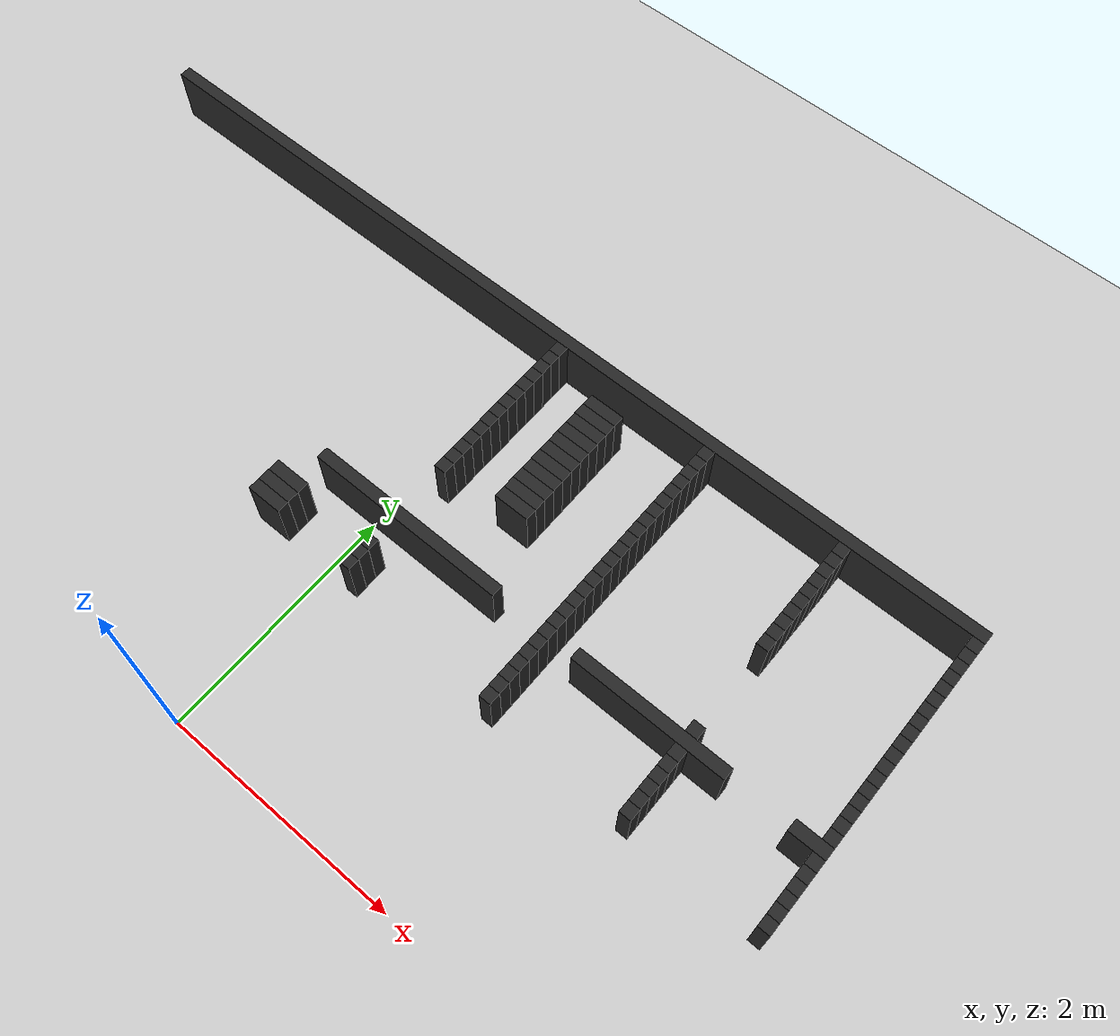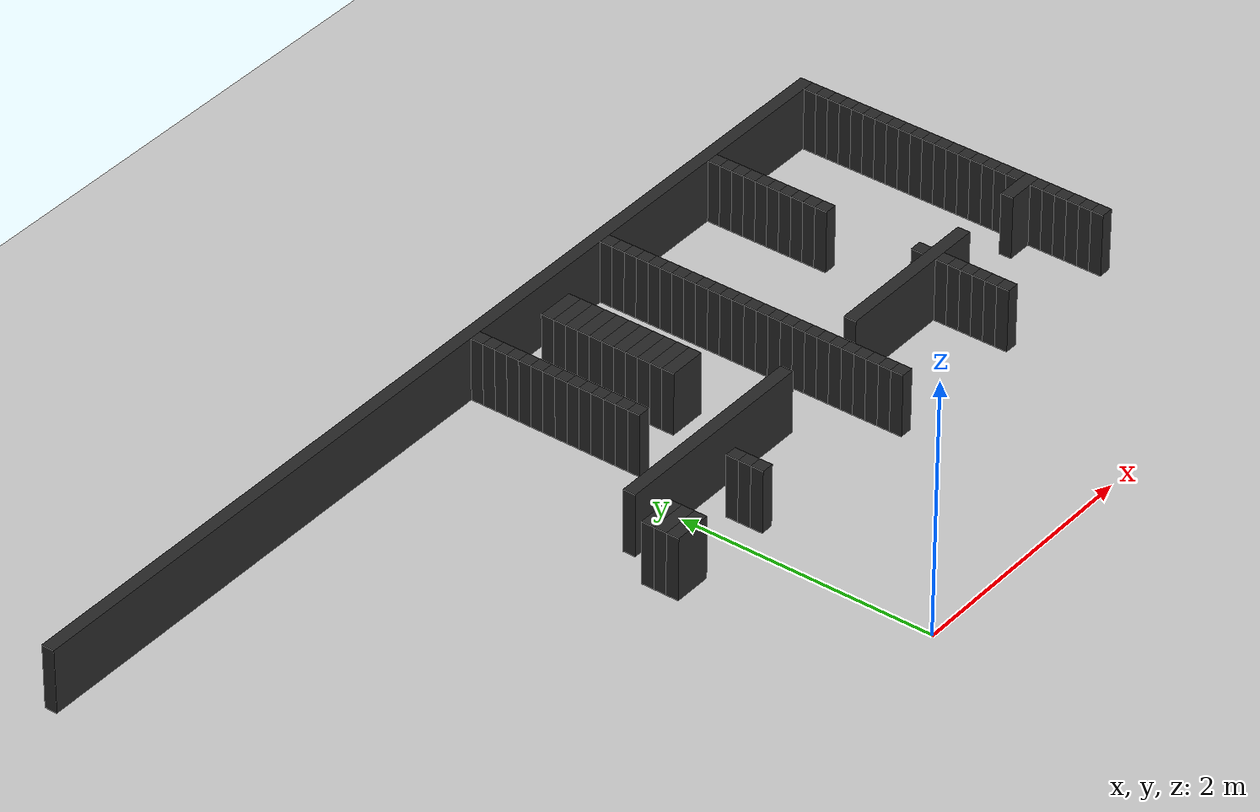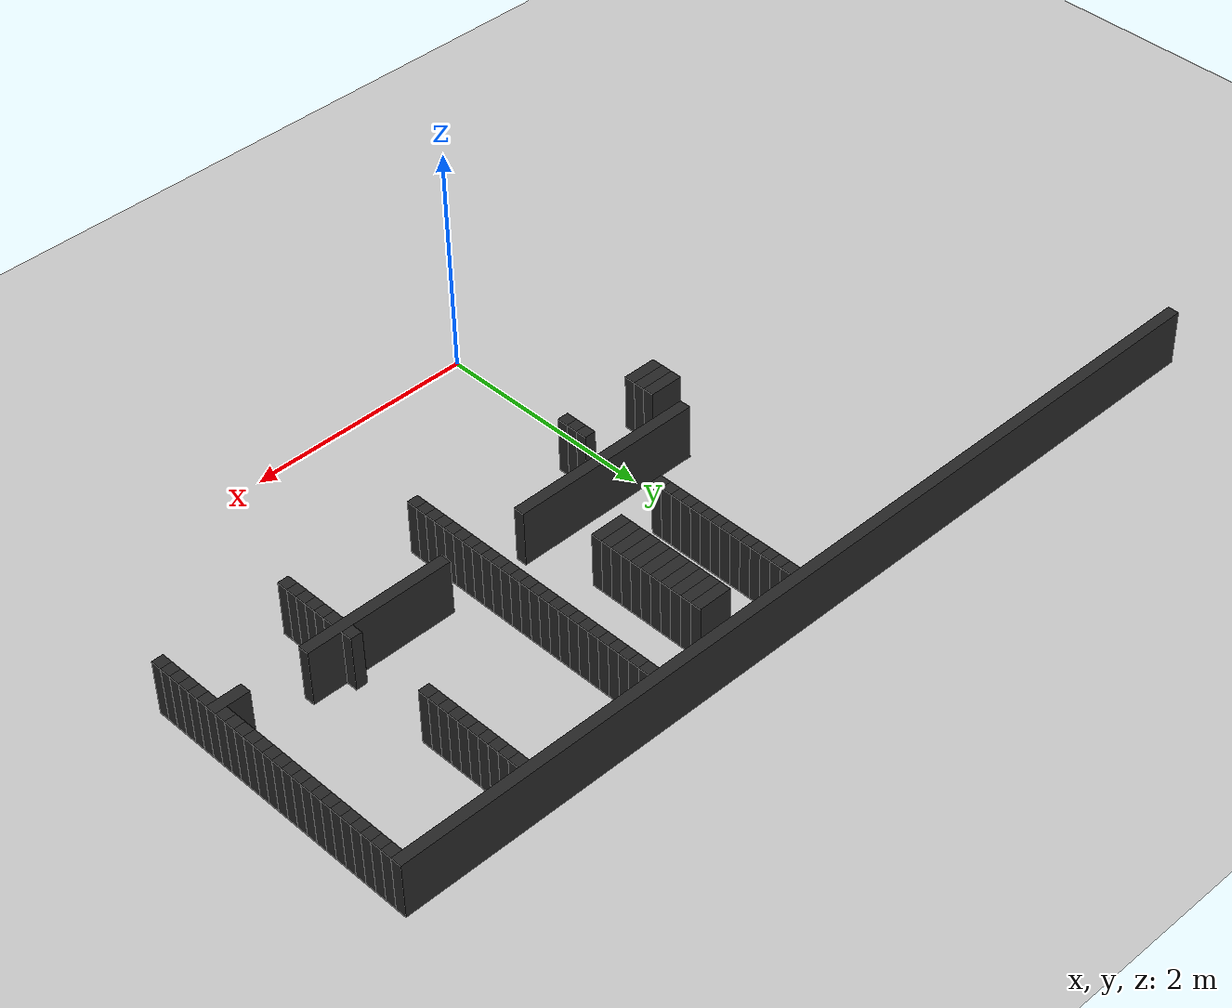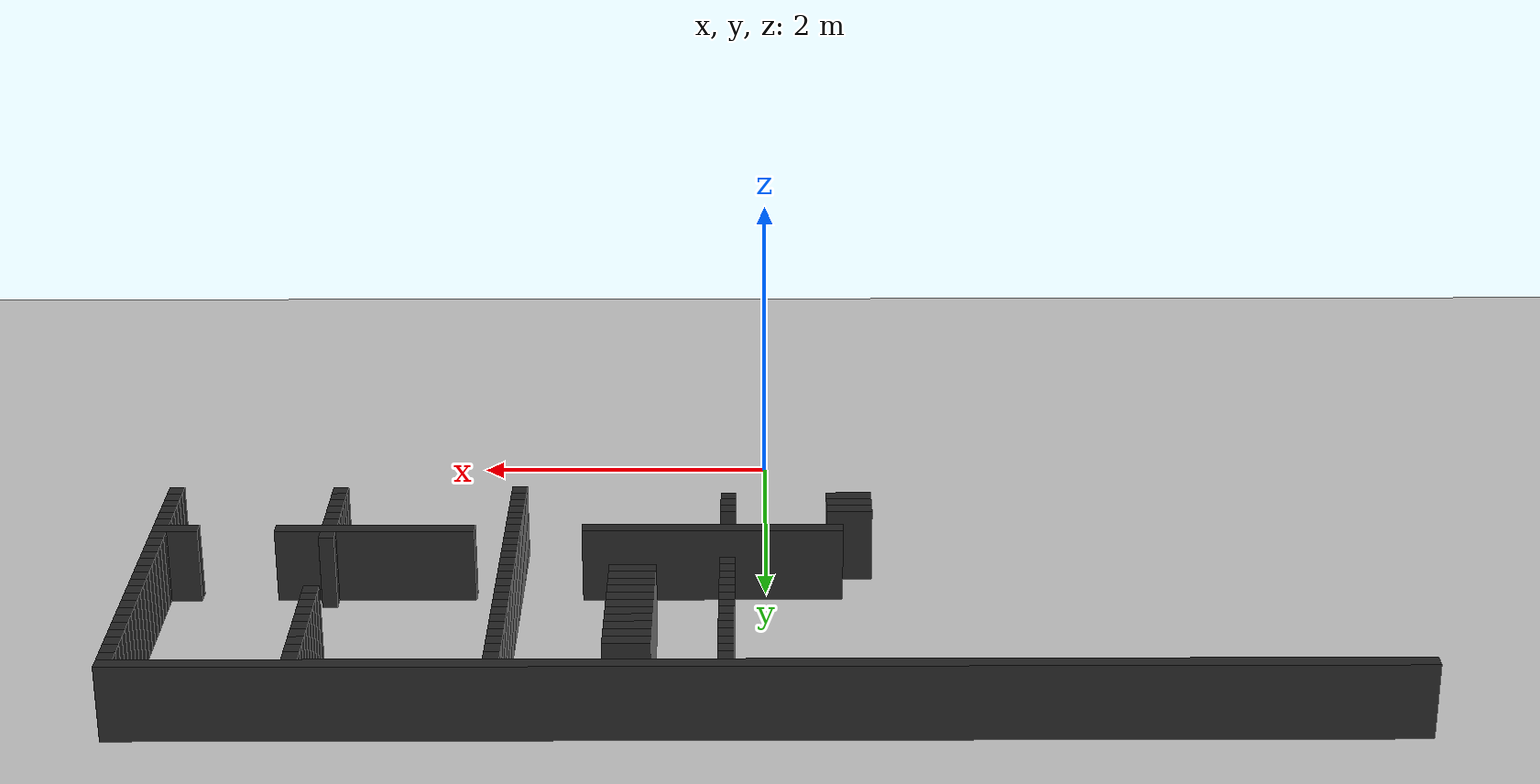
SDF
<sdf version="1.6">
 <world name="stress_maze_world">
  <include><uri>model://sun</uri></include>
  <include><uri>model://ground_plane</uri></include>
  <model name="wall_054_056">
   <static>true</static>
   <pose>1.65000 1.45000 0.25 0 0 0</pose>
   <link name="link">
    <collision name="collision"><geometry><box><size>0.10000 0.10000 0.5</size></box></geometry></collision>
    <visual name="visual">
     <geometry><box><size>0.10000 0.10000 0.5</size></box></geometry>
     <material><ambient>0.12 0.12 0.12 1</ambient><diffuse>0.15 0.15 0.15 1</diffuse></material>
    </visual>
   </link>
  </model>
  <model name="wall_054_068">
   <static>true</static>
   <pose>2.85000 1.45000 0.25 0 0 0</pose>
   <link name="link">
    <collision name="collision"><geometry><box><size>0.10000 0.10000 0.5</size></box></geometry></collision>
    <visual name="visual">
     <geometry><box><size>0.10000 0.10000 0.5</size></box></geometry>
     <material><ambient>0.12 0.12 0.12 1</ambient><diffuse>0.15 0.15 0.15 1</diffuse></material>
    </visual>
   </link>
  </model>
  <model name="wall_054_079">
   <static>true</static>
   <pose>3.95000 1.45000 0.25 0 0 0</pose>
   <link name="link">
    <collision name="collision"><geometry><box><size>0.10000 0.10000 0.5</size></box></geometry></collision>
    <visual name="visual">
     <geometry><box><size>0.10000 0.10000 0.5</size></box></geometry>
     <material><ambient>0.12 0.12 0.12 1</ambient><diffuse>0.15 0.15 0.15 1</diffuse></material>
    </visual>
   </link>
  </model>
  <model name="wall_055_033">
   <static>true</static>
   <pose>-0.55000 1.55000 0.25 0 0 0</pose>
   <link name="link">
    <collision name="collision"><geometry><box><size>0.30000 0.10000 0.5</size></box></geometry></collision>
    <visual name="visual">
     <geometry><box><size>0.30000 0.10000 0.5</size></box></geometry>
     <material><ambient>0.12 0.12 0.12 1</ambient><diffuse>0.15 0.15 0.15 1</diffuse></material>
    </visual>
   </link>
  </model>
  <model name="wall_055_042">
   <static>true</static>
   <pose>0.25000 1.55000 0.25 0 0 0</pose>
   <link name="link">
    <collision name="collision"><geometry><box><size>0.10000 0.10000 0.5</size></box></geometry></collision>
    <visual name="visual">
     <geometry><box><size>0.10000 0.10000 0.5</size></box></geometry>
     <material><ambient>0.12 0.12 0.12 1</ambient><diffuse>0.15 0.15 0.15 1</diffuse></material>
    </visual>
   </link>
  </model>
  <model name="wall_055_056">
   <static>true</static>
   <pose>1.65000 1.55000 0.25 0 0 0</pose>
   <link name="link">
    <collision name="collision"><geometry><box><size>0.10000 0.10000 0.5</size></box></geometry></collision>
    <visual name="visual">
     <geometry><box><size>0.10000 0.10000 0.5</size></box></geometry>
     <material><ambient>0.12 0.12 0.12 1</ambient><diffuse>0.15 0.15 0.15 1</diffuse></material>
    </visual>
   </link>
  </model>
  <model name="wall_055_068">
   <static>true</static>
   <pose>2.85000 1.55000 0.25 0 0 0</pose>
   <link name="link">
    <collision name="collision"><geometry><box><size>0.10000 0.10000 0.5</size></box></geometry></collision>
    <visual name="visual">
     <geometry><box><size>0.10000 0.10000 0.5</size></box></geometry>
     <material><ambient>0.12 0.12 0.12 1</ambient><diffuse>0.15 0.15 0.15 1</diffuse></material>
    </visual>
   </link>
  </model>
  <model name="wall_055_079">
   <static>true</static>
   <pose>3.95000 1.55000 0.25 0 0 0</pose>
   <link name="link">
    <collision name="collision"><geometry><box><size>0.10000 0.10000 0.5</size></box></geometry></collision>
    <visual name="visual">
     <geometry><box><size>0.10000 0.10000 0.5</size></box></geometry>
     <material><ambient>0.12 0.12 0.12 1</ambient><diffuse>0.15 0.15 0.15 1</diffuse></material>
    </visual>
   </link>
  </model>
  <model name="wall_056_033">
   <static>true</static>
   <pose>-0.55000 1.65000 0.25 0 0 0</pose>
   <link name="link">
    <collision name="collision"><geometry><box><size>0.30000 0.10000 0.5</size></box></geometry></collision>
    <visual name="visual">
     <geometry><box><size>0.30000 0.10000 0.5</size></box></geometry>
     <material><ambient>0.12 0.12 0.12 1</ambient><diffuse>0.15 0.15 0.15 1</diffuse></material>
    </visual>
   </link>
  </model>
  <model name="wall_056_042">
   <static>true</static>
   <pose>0.25000 1.65000 0.25 0 0 0</pose>
   <link name="link">
    <collision name="collision"><geometry><box><size>0.10000 0.10000 0.5</size></box></geometry></collision>
    <visual name="visual">
     <geometry><box><size>0.10000 0.10000 0.5</size></box></geometry>
     <material><ambient>0.12 0.12 0.12 1</ambient><diffuse>0.15 0.15 0.15 1</diffuse></material>
    </visual>
   </link>
  </model>
  <model name="wall_056_056">
   <static>true</static>
   <pose>1.65000 1.65000 0.25 0 0 0</pose>
   <link name="link">
    <collision name="collision"><geometry><box><size>0.10000 0.10000 0.5</size></box></geometry></collision>
    <visual name="visual">
     <geometry><box><size>0.10000 0.10000 0.5</size></box></geometry>
     <material><ambient>0.12 0.12 0.12 1</ambient><diffuse>0.15 0.15 0.15 1</diffuse></material>
    </visual>
   </link>
  </model>
  <model name="wall_056_068">
   <static>true</static>
   <pose>2.85000 1.65000 0.25 0 0 0</pose>
   <link name="link">
    <collision name="collision"><geometry><box><size>0.10000 0.10000 0.5</size></box></geometry></collision>
    <visual name="visual">
     <geometry><box><size>0.10000 0.10000 0.5</size></box></geometry>
     <material><ambient>0.12 0.12 0.12 1</ambient><diffuse>0.15 0.15 0.15 1</diffuse></material>
    </visual>
   </link>
  </model>
  <model name="wall_056_079">
   <static>true</static>
   <pose>3.95000 1.65000 0.25 0 0 0</pose>
   <link name="link">
    <collision name="collision"><geometry><box><size>0.10000 0.10000 0.5</size></box></geometry></collision>
    <visual name="visual">
     <geometry><box><size>0.10000 0.10000 0.5</size></box></geometry>
     <material><ambient>0.12 0.12 0.12 1</ambient><diffuse>0.15 0.15 0.15 1</diffuse></material>
    </visual>
   </link>
  </model>
  <model name="wall_057_033">
   <static>true</static>
   <pose>-0.55000 1.75000 0.25 0 0 0</pose>
   <link name="link">
    <collision name="collision"><geometry><box><size>0.30000 0.10000 0.5</size></box></geometry></collision>
    <visual name="visual">
     <geometry><box><size>0.30000 0.10000 0.5</size></box></geometry>
     <material><ambient>0.12 0.12 0.12 1</ambient><diffuse>0.15 0.15 0.15 1</diffuse></material>
    </visual>
   </link>
  </model>
  <model name="wall_057_042">
   <static>true</static>
   <pose>0.25000 1.75000 0.25 0 0 0</pose>
   <link name="link">
    <collision name="collision"><geometry><box><size>0.10000 0.10000 0.5</size></box></geometry></collision>
    <visual name="visual">
     <geometry><box><size>0.10000 0.10000 0.5</size></box></geometry>
     <material><ambient>0.12 0.12 0.12 1</ambient><diffuse>0.15 0.15 0.15 1</diffuse></material>
    </visual>
   </link>
  </model>
  <model name="wall_057_056">
   <static>true</static>
   <pose>1.65000 1.75000 0.25 0 0 0</pose>
   <link name="link">
    <collision name="collision"><geometry><box><size>0.10000 0.10000 0.5</size></box></geometry></collision>
    <visual name="visual">
     <geometry><box><size>0.10000 0.10000 0.5</size></box></geometry>
     <material><ambient>0.12 0.12 0.12 1</ambient><diffuse>0.15 0.15 0.15 1</diffuse></material>
    </visual>
   </link>
  </model>
  <model name="wall_057_068">
   <static>true</static>
   <pose>2.85000 1.75000 0.25 0 0 0</pose>
   <link name="link">
    <collision name="collision"><geometry><box><size>0.10000 0.10000 0.5</size></box></geometry></collision>
    <visual name="visual">
     <geometry><box><size>0.10000 0.10000 0.5</size></box></geometry>
     <material><ambient>0.12 0.12 0.12 1</ambient><diffuse>0.15 0.15 0.15 1</diffuse></material>
    </visual>
   </link>
  </model>
  <model name="wall_057_079">
   <static>true</static>
   <pose>3.95000 1.75000 0.25 0 0 0</pose>
   <link name="link">
    <collision name="collision"><geometry><box><size>0.10000 0.10000 0.5</size></box></geometry></collision>
    <visual name="visual">
     <geometry><box><size>0.10000 0.10000 0.5</size></box></geometry>
     <material><ambient>0.12 0.12 0.12 1</ambient><diffuse>0.15 0.15 0.15 1</diffuse></material>
    </visual>
   </link>
  </model>
  <model name="wall_058_056">
   <static>true</static>
   <pose>1.65000 1.85000 0.25 0 0 0</pose>
   <link name="link">
    <collision name="collision"><geometry><box><size>0.10000 0.10000 0.5</size></box></geometry></collision>
    <visual name="visual">
     <geometry><box><size>0.10000 0.10000 0.5</size></box></geometry>
     <material><ambient>0.12 0.12 0.12 1</ambient><diffuse>0.15 0.15 0.15 1</diffuse></material>
    </visual>
   </link>
  </model>
  <model name="wall_058_068">
   <static>true</static>
   <pose>2.85000 1.85000 0.25 0 0 0</pose>
   <link name="link">
    <collision name="collision"><geometry><box><size>0.10000 0.10000 0.5</size></box></geometry></collision>
    <visual name="visual">
     <geometry><box><size>0.10000 0.10000 0.5</size></box></geometry>
     <material><ambient>0.12 0.12 0.12 1</ambient><diffuse>0.15 0.15 0.15 1</diffuse></material>
    </visual>
   </link>
  </model>
  <model name="wall_058_079">
   <static>true</static>
   <pose>3.95000 1.85000 0.25 0 0 0</pose>
   <link name="link">
    <collision name="collision"><geometry><box><size>0.10000 0.10000 0.5</size></box></geometry></collision>
    <visual name="visual">
     <geometry><box><size>0.10000 0.10000 0.5</size></box></geometry>
     <material><ambient>0.12 0.12 0.12 1</ambient><diffuse>0.15 0.15 0.15 1</diffuse></material>
    </visual>
   </link>
  </model>
  <model name="wall_059_056">
   <static>true</static>
   <pose>1.65000 1.95000 0.25 0 0 0</pose>
   <link name="link">
    <collision name="collision"><geometry><box><size>0.10000 0.10000 0.5</size></box></geometry></collision>
    <visual name="visual">
     <geometry><box><size>0.10000 0.10000 0.5</size></box></geometry>
     <material><ambient>0.12 0.12 0.12 1</ambient><diffuse>0.15 0.15 0.15 1</diffuse></material>
    </visual>
   </link>
  </model>
  <model name="wall_059_068">
   <static>true</static>
   <pose>2.85000 1.95000 0.25 0 0 0</pose>
   <link name="link">
    <collision name="collision"><geometry><box><size>0.10000 0.10000 0.5</size></box></geometry></collision>
    <visual name="visual">
     <geometry><box><size>0.10000 0.10000 0.5</size></box></geometry>
     <material><ambient>0.12 0.12 0.12 1</ambient><diffuse>0.15 0.15 0.15 1</diffuse></material>
    </visual>
   </link>
  </model>
  <model name="wall_059_079">
   <static>true</static>
   <pose>3.95000 1.95000 0.25 0 0 0</pose>
   <link name="link">
    <collision name="collision"><geometry><box><size>0.10000 0.10000 0.5</size></box></geometry></collision>
    <visual name="visual">
     <geometry><box><size>0.10000 0.10000 0.5</size></box></geometry>
     <material><ambient>0.12 0.12 0.12 1</ambient><diffuse>0.15 0.15 0.15 1</diffuse></material>
    </visual>
   </link>
  </model>
  <model name="wall_060_035">
   <static>true</static>
   <pose>0.35000 2.05000 0.25 0 0 0</pose>
   <link name="link">
    <collision name="collision"><geometry><box><size>1.70000 0.10000 0.5</size></box></geometry></collision>
    <visual name="visual">
     <geometry><box><size>1.70000 0.10000 0.5</size></box></geometry>
     <material><ambient>0.12 0.12 0.12 1</ambient><diffuse>0.15 0.15 0.15 1</diffuse></material>
    </visual>
   </link>
  </model>
  <model name="wall_060_056">
   <static>true</static>
   <pose>1.65000 2.05000 0.25 0 0 0</pose>
   <link name="link">
    <collision name="collision"><geometry><box><size>0.10000 0.10000 0.5</size></box></geometry></collision>
    <visual name="visual">
     <geometry><box><size>0.10000 0.10000 0.5</size></box></geometry>
     <material><ambient>0.12 0.12 0.12 1</ambient><diffuse>0.15 0.15 0.15 1</diffuse></material>
    </visual>
   </link>
  </model>
  <model name="wall_060_059">
   <static>true</static>
   <pose>2.55000 2.05000 0.25 0 0 0</pose>
   <link name="link">
    <collision name="collision"><geometry><box><size>1.30000 0.10000 0.5</size></box></geometry></collision>
    <visual name="visual">
     <geometry><box><size>1.30000 0.10000 0.5</size></box></geometry>
     <material><ambient>0.12 0.12 0.12 1</ambient><diffuse>0.15 0.15 0.15 1</diffuse></material>
    </visual>
   </link>
  </model>
  <model name="wall_060_077">
   <static>true</static>
   <pose>3.85000 2.05000 0.25 0 0 0</pose>
   <link name="link">
    <collision name="collision"><geometry><box><size>0.30000 0.10000 0.5</size></box></geometry></collision>
    <visual name="visual">
     <geometry><box><size>0.30000 0.10000 0.5</size></box></geometry>
     <material><ambient>0.12 0.12 0.12 1</ambient><diffuse>0.15 0.15 0.15 1</diffuse></material>
    </visual>
   </link>
  </model>
  <model name="wall_061_056">
   <static>true</static>
   <pose>1.65000 2.15000 0.25 0 0 0</pose>
   <link name="link">
    <collision name="collision"><geometry><box><size>0.10000 0.10000 0.5</size></box></geometry></collision>
    <visual name="visual">
     <geometry><box><size>0.10000 0.10000 0.5</size></box></geometry>
     <material><ambient>0.12 0.12 0.12 1</ambient><diffuse>0.15 0.15 0.15 1</diffuse></material>
    </visual>
   </link>
  </model>
  <model name="wall_061_068">
   <static>true</static>
   <pose>2.85000 2.15000 0.25 0 0 0</pose>
   <link name="link">
    <collision name="collision"><geometry><box><size>0.10000 0.10000 0.5</size></box></geometry></collision>
    <visual name="visual">
     <geometry><box><size>0.10000 0.10000 0.5</size></box></geometry>
     <material><ambient>0.12 0.12 0.12 1</ambient><diffuse>0.15 0.15 0.15 1</diffuse></material>
    </visual>
   </link>
  </model>
  <model name="wall_061_079">
   <static>true</static>
   <pose>3.95000 2.15000 0.25 0 0 0</pose>
   <link name="link">
    <collision name="collision"><geometry><box><size>0.10000 0.10000 0.5</size></box></geometry></collision>
    <visual name="visual">
     <geometry><box><size>0.10000 0.10000 0.5</size></box></geometry>
     <material><ambient>0.12 0.12 0.12 1</ambient><diffuse>0.15 0.15 0.15 1</diffuse></material>
    </visual>
   </link>
  </model>
  <model name="wall_062_056">
   <static>true</static>
   <pose>1.65000 2.25000 0.25 0 0 0</pose>
   <link name="link">
    <collision name="collision"><geometry><box><size>0.10000 0.10000 0.5</size></box></geometry></collision>
    <visual name="visual">
     <geometry><box><size>0.10000 0.10000 0.5</size></box></geometry>
     <material><ambient>0.12 0.12 0.12 1</ambient><diffuse>0.15 0.15 0.15 1</diffuse></material>
    </visual>
   </link>
  </model>
  <model name="wall_062_079">
   <static>true</static>
   <pose>3.95000 2.25000 0.25 0 0 0</pose>
   <link name="link">
    <collision name="collision"><geometry><box><size>0.10000 0.10000 0.5</size></box></geometry></collision>
    <visual name="visual">
     <geometry><box><size>0.10000 0.10000 0.5</size></box></geometry>
     <material><ambient>0.12 0.12 0.12 1</ambient><diffuse>0.15 0.15 0.15 1</diffuse></material>
    </visual>
   </link>
  </model>
  <model name="wall_063_056">
   <static>true</static>
   <pose>1.65000 2.35000 0.25 0 0 0</pose>
   <link name="link">
    <collision name="collision"><geometry><box><size>0.10000 0.10000 0.5</size></box></geometry></collision>
    <visual name="visual">
     <geometry><box><size>0.10000 0.10000 0.5</size></box></geometry>
     <material><ambient>0.12 0.12 0.12 1</ambient><diffuse>0.15 0.15 0.15 1</diffuse></material>
    </visual>
   </link>
  </model>
  <model name="wall_063_079">
   <static>true</static>
   <pose>3.95000 2.35000 0.25 0 0 0</pose>
   <link name="link">
    <collision name="collision"><geometry><box><size>0.10000 0.10000 0.5</size></box></geometry></collision>
    <visual name="visual">
     <geometry><box><size>0.10000 0.10000 0.5</size></box></geometry>
     <material><ambient>0.12 0.12 0.12 1</ambient><diffuse>0.15 0.15 0.15 1</diffuse></material>
    </visual>
   </link>
  </model>
  <model name="wall_064_056">
   <static>true</static>
   <pose>1.65000 2.45000 0.25 0 0 0</pose>
   <link name="link">
    <collision name="collision"><geometry><box><size>0.10000 0.10000 0.5</size></box></geometry></collision>
    <visual name="visual">
     <geometry><box><size>0.10000 0.10000 0.5</size></box></geometry>
     <material><ambient>0.12 0.12 0.12 1</ambient><diffuse>0.15 0.15 0.15 1</diffuse></material>
    </visual>
   </link>
  </model>
  <model name="wall_064_079">
   <static>true</static>
   <pose>3.95000 2.45000 0.25 0 0 0</pose>
   <link name="link">
    <collision name="collision"><geometry><box><size>0.10000 0.10000 0.5</size></box></geometry></collision>
    <visual name="visual">
     <geometry><box><size>0.10000 0.10000 0.5</size></box></geometry>
     <material><ambient>0.12 0.12 0.12 1</ambient><diffuse>0.15 0.15 0.15 1</diffuse></material>
    </visual>
   </link>
  </model>
  <model name="wall_065_042">
   <static>true</static>
   <pose>0.25000 2.55000 0.25 0 0 0</pose>
   <link name="link">
    <collision name="collision"><geometry><box><size>0.10000 0.10000 0.5</size></box></geometry></collision>
    <visual name="visual">
     <geometry><box><size>0.10000 0.10000 0.5</size></box></geometry>
     <material><ambient>0.12 0.12 0.12 1</ambient><diffuse>0.15 0.15 0.15 1</diffuse></material>
    </visual>
   </link>
  </model>
  <model name="wall_065_056">
   <static>true</static>
   <pose>1.65000 2.55000 0.25 0 0 0</pose>
   <link name="link">
    <collision name="collision"><geometry><box><size>0.10000 0.10000 0.5</size></box></geometry></collision>
    <visual name="visual">
     <geometry><box><size>0.10000 0.10000 0.5</size></box></geometry>
     <material><ambient>0.12 0.12 0.12 1</ambient><diffuse>0.15 0.15 0.15 1</diffuse></material>
    </visual>
   </link>
  </model>
  <model name="wall_065_079">
   <static>true</static>
   <pose>3.95000 2.55000 0.25 0 0 0</pose>
   <link name="link">
    <collision name="collision"><geometry><box><size>0.10000 0.10000 0.5</size></box></geometry></collision>
    <visual name="visual">
     <geometry><box><size>0.10000 0.10000 0.5</size></box></geometry>
     <material><ambient>0.12 0.12 0.12 1</ambient><diffuse>0.15 0.15 0.15 1</diffuse></material>
    </visual>
   </link>
  </model>
  <model name="wall_066_042">
   <static>true</static>
   <pose>0.25000 2.65000 0.25 0 0 0</pose>
   <link name="link">
    <collision name="collision"><geometry><box><size>0.10000 0.10000 0.5</size></box></geometry></collision>
    <visual name="visual">
     <geometry><box><size>0.10000 0.10000 0.5</size></box></geometry>
     <material><ambient>0.12 0.12 0.12 1</ambient><diffuse>0.15 0.15 0.15 1</diffuse></material>
    </visual>
   </link>
  </model>
  <model name="wall_066_047">
   <static>true</static>
   <pose>0.85000 2.65000 0.25 0 0 0</pose>
   <link name="link">
    <collision name="collision"><geometry><box><size>0.30000 0.10000 0.5</size></box></geometry></collision>
    <visual name="visual">
     <geometry><box><size>0.30000 0.10000 0.5</size></box></geometry>
     <material><ambient>0.12 0.12 0.12 1</ambient><diffuse>0.15 0.15 0.15 1</diffuse></material>
    </visual>
   </link>
  </model>
  <model name="wall_066_056">
   <static>true</static>
   <pose>1.65000 2.65000 0.25 0 0 0</pose>
   <link name="link">
    <collision name="collision"><geometry><box><size>0.10000 0.10000 0.5</size></box></geometry></collision>
    <visual name="visual">
     <geometry><box><size>0.10000 0.10000 0.5</size></box></geometry>
     <material><ambient>0.12 0.12 0.12 1</ambient><diffuse>0.15 0.15 0.15 1</diffuse></material>
    </visual>
   </link>
  </model>
  <model name="wall_066_079">
   <static>true</static>
   <pose>3.95000 2.65000 0.25 0 0 0</pose>
   <link name="link">
    <collision name="collision"><geometry><box><size>0.10000 0.10000 0.5</size></box></geometry></collision>
    <visual name="visual">
     <geometry><box><size>0.10000 0.10000 0.5</size></box></geometry>
     <material><ambient>0.12 0.12 0.12 1</ambient><diffuse>0.15 0.15 0.15 1</diffuse></material>
    </visual>
   </link>
  </model>
  <model name="wall_067_042">
   <static>true</static>
   <pose>0.25000 2.75000 0.25 0 0 0</pose>
   <link name="link">
    <collision name="collision"><geometry><box><size>0.10000 0.10000 0.5</size></box></geometry></collision>
    <visual name="visual">
     <geometry><box><size>0.10000 0.10000 0.5</size></box></geometry>
     <material><ambient>0.12 0.12 0.12 1</ambient><diffuse>0.15 0.15 0.15 1</diffuse></material>
    </visual>
   </link>
  </model>
  <model name="wall_067_047">
   <static>true</static>
   <pose>0.85000 2.75000 0.25 0 0 0</pose>
   <link name="link">
    <collision name="collision"><geometry><box><size>0.30000 0.10000 0.5</size></box></geometry></collision>
    <visual name="visual">
     <geometry><box><size>0.30000 0.10000 0.5</size></box></geometry>
     <material><ambient>0.12 0.12 0.12 1</ambient><diffuse>0.15 0.15 0.15 1</diffuse></material>
    </visual>
   </link>
  </model>
  <model name="wall_067_056">
   <static>true</static>
   <pose>1.65000 2.75000 0.25 0 0 0</pose>
   <link name="link">
    <collision name="collision"><geometry><box><size>0.10000 0.10000 0.5</size></box></geometry></collision>
    <visual name="visual">
     <geometry><box><size>0.10000 0.10000 0.5</size></box></geometry>
     <material><ambient>0.12 0.12 0.12 1</ambient><diffuse>0.15 0.15 0.15 1</diffuse></material>
    </visual>
   </link>
  </model>
  <model name="wall_067_079">
   <static>true</static>
   <pose>3.95000 2.75000 0.25 0 0 0</pose>
   <link name="link">
    <collision name="collision"><geometry><box><size>0.10000 0.10000 0.5</size></box></geometry></collision>
    <visual name="visual">
     <geometry><box><size>0.10000 0.10000 0.5</size></box></geometry>
     <material><ambient>0.12 0.12 0.12 1</ambient><diffuse>0.15 0.15 0.15 1</diffuse></material>
    </visual>
   </link>
  </model>
  <model name="wall_068_042">
   <static>true</static>
   <pose>0.25000 2.85000 0.25 0 0 0</pose>
   <link name="link">
    <collision name="collision"><geometry><box><size>0.10000 0.10000 0.5</size></box></geometry></collision>
    <visual name="visual">
     <geometry><box><size>0.10000 0.10000 0.5</size></box></geometry>
     <material><ambient>0.12 0.12 0.12 1</ambient><diffuse>0.15 0.15 0.15 1</diffuse></material>
    </visual>
   </link>
  </model>
  <model name="wall_068_047">
   <static>true</static>
   <pose>0.85000 2.85000 0.25 0 0 0</pose>
   <link name="link">
    <collision name="collision"><geometry><box><size>0.30000 0.10000 0.5</size></box></geometry></collision>
    <visual name="visual">
     <geometry><box><size>0.30000 0.10000 0.5</size></box></geometry>
     <material><ambient>0.12 0.12 0.12 1</ambient><diffuse>0.15 0.15 0.15 1</diffuse></material>
    </visual>
   </link>
  </model>
  <model name="wall_068_056">
   <static>true</static>
   <pose>1.65000 2.85000 0.25 0 0 0</pose>
   <link name="link">
    <collision name="collision"><geometry><box><size>0.10000 0.10000 0.5</size></box></geometry></collision>
    <visual name="visual">
     <geometry><box><size>0.10000 0.10000 0.5</size></box></geometry>
     <material><ambient>0.12 0.12 0.12 1</ambient><diffuse>0.15 0.15 0.15 1</diffuse></material>
    </visual>
   </link>
  </model>
  <model name="wall_068_079">
   <static>true</static>
   <pose>3.95000 2.85000 0.25 0 0 0</pose>
   <link name="link">
    <collision name="collision"><geometry><box><size>0.10000 0.10000 0.5</size></box></geometry></collision>
    <visual name="visual">
     <geometry><box><size>0.10000 0.10000 0.5</size></box></geometry>
     <material><ambient>0.12 0.12 0.12 1</ambient><diffuse>0.15 0.15 0.15 1</diffuse></material>
    </visual>
   </link>
  </model>
  <model name="wall_069_042">
   <static>true</static>
   <pose>0.25000 2.95000 0.25 0 0 0</pose>
   <link name="link">
    <collision name="collision"><geometry><box><size>0.10000 0.10000 0.5</size></box></geometry></collision>
    <visual name="visual">
     <geometry><box><size>0.10000 0.10000 0.5</size></box></geometry>
     <material><ambient>0.12 0.12 0.12 1</ambient><diffuse>0.15 0.15 0.15 1</diffuse></material>
    </visual>
   </link>
  </model>
  <model name="wall_069_047">
   <static>true</static>
   <pose>0.85000 2.95000 0.25 0 0 0</pose>
   <link name="link">
    <collision name="collision"><geometry><box><size>0.30000 0.10000 0.5</size></box></geometry></collision>
    <visual name="visual">
     <geometry><box><size>0.30000 0.10000 0.5</size></box></geometry>
     <material><ambient>0.12 0.12 0.12 1</ambient><diffuse>0.15 0.15 0.15 1</diffuse></material>
    </visual>
   </link>
  </model>
  <model name="wall_069_056">
   <static>true</static>
   <pose>1.65000 2.95000 0.25 0 0 0</pose>
   <link name="link">
    <collision name="collision"><geometry><box><size>0.10000 0.10000 0.5</size></box></geometry></collision>
    <visual name="visual">
     <geometry><box><size>0.10000 0.10000 0.5</size></box></geometry>
     <material><ambient>0.12 0.12 0.12 1</ambient><diffuse>0.15 0.15 0.15 1</diffuse></material>
    </visual>
   </link>
  </model>
  <model name="wall_069_068">
   <static>true</static>
   <pose>2.85000 2.95000 0.25 0 0 0</pose>
   <link name="link">
    <collision name="collision"><geometry><box><size>0.10000 0.10000 0.5</size></box></geometry></collision>
    <visual name="visual">
     <geometry><box><size>0.10000 0.10000 0.5</size></box></geometry>
     <material><ambient>0.12 0.12 0.12 1</ambient><diffuse>0.15 0.15 0.15 1</diffuse></material>
    </visual>
   </link>
  </model>
  <model name="wall_069_079">
   <static>true</static>
   <pose>3.95000 2.95000 0.25 0 0 0</pose>
   <link name="link">
    <collision name="collision"><geometry><box><size>0.10000 0.10000 0.5</size></box></geometry></collision>
    <visual name="visual">
     <geometry><box><size>0.10000 0.10000 0.5</size></box></geometry>
     <material><ambient>0.12 0.12 0.12 1</ambient><diffuse>0.15 0.15 0.15 1</diffuse></material>
    </visual>
   </link>
  </model>
  <model name="wall_070_042">
   <static>true</static>
   <pose>0.25000 3.05000 0.25 0 0 0</pose>
   <link name="link">
    <collision name="collision"><geometry><box><size>0.10000 0.10000 0.5</size></box></geometry></collision>
    <visual name="visual">
     <geometry><box><size>0.10000 0.10000 0.5</size></box></geometry>
     <material><ambient>0.12 0.12 0.12 1</ambient><diffuse>0.15 0.15 0.15 1</diffuse></material>
    </visual>
   </link>
  </model>
  <model name="wall_070_047">
   <static>true</static>
   <pose>0.85000 3.05000 0.25 0 0 0</pose>
   <link name="link">
    <collision name="collision"><geometry><box><size>0.30000 0.10000 0.5</size></box></geometry></collision>
    <visual name="visual">
     <geometry><box><size>0.30000 0.10000 0.5</size></box></geometry>
     <material><ambient>0.12 0.12 0.12 1</ambient><diffuse>0.15 0.15 0.15 1</diffuse></material>
    </visual>
   </link>
  </model>
  <model name="wall_070_056">
   <static>true</static>
   <pose>1.65000 3.05000 0.25 0 0 0</pose>
   <link name="link">
    <collision name="collision"><geometry><box><size>0.10000 0.10000 0.5</size></box></geometry></collision>
    <visual name="visual">
     <geometry><box><size>0.10000 0.10000 0.5</size></box></geometry>
     <material><ambient>0.12 0.12 0.12 1</ambient><diffuse>0.15 0.15 0.15 1</diffuse></material>
    </visual>
   </link>
  </model>
  <model name="wall_070_068">
   <static>true</static>
   <pose>2.85000 3.05000 0.25 0 0 0</pose>
   <link name="link">
    <collision name="collision"><geometry><box><size>0.10000 0.10000 0.5</size></box></geometry></collision>
    <visual name="visual">
     <geometry><box><size>0.10000 0.10000 0.5</size></box></geometry>
     <material><ambient>0.12 0.12 0.12 1</ambient><diffuse>0.15 0.15 0.15 1</diffuse></material>
    </visual>
   </link>
  </model>
  <model name="wall_070_079">
   <static>true</static>
   <pose>3.95000 3.05000 0.25 0 0 0</pose>
   <link name="link">
    <collision name="collision"><geometry><box><size>0.10000 0.10000 0.5</size></box></geometry></collision>
    <visual name="visual">
     <geometry><box><size>0.10000 0.10000 0.5</size></box></geometry>
     <material><ambient>0.12 0.12 0.12 1</ambient><diffuse>0.15 0.15 0.15 1</diffuse></material>
    </visual>
   </link>
  </model>
  <model name="wall_071_042">
   <static>true</static>
   <pose>0.25000 3.15000 0.25 0 0 0</pose>
   <link name="link">
    <collision name="collision"><geometry><box><size>0.10000 0.10000 0.5</size></box></geometry></collision>
    <visual name="visual">
     <geometry><box><size>0.10000 0.10000 0.5</size></box></geometry>
     <material><ambient>0.12 0.12 0.12 1</ambient><diffuse>0.15 0.15 0.15 1</diffuse></material>
    </visual>
   </link>
  </model>
  <model name="wall_071_047">
   <static>true</static>
   <pose>0.85000 3.15000 0.25 0 0 0</pose>
   <link name="link">
    <collision name="collision"><geometry><box><size>0.30000 0.10000 0.5</size></box></geometry></collision>
    <visual name="visual">
     <geometry><box><size>0.30000 0.10000 0.5</size></box></geometry>
     <material><ambient>0.12 0.12 0.12 1</ambient><diffuse>0.15 0.15 0.15 1</diffuse></material>
    </visual>
   </link>
  </model>
  <model name="wall_071_056">
   <static>true</static>
   <pose>1.65000 3.15000 0.25 0 0 0</pose>
   <link name="link">
    <collision name="collision"><geometry><box><size>0.10000 0.10000 0.5</size></box></geometry></collision>
    <visual name="visual">
     <geometry><box><size>0.10000 0.10000 0.5</size></box></geometry>
     <material><ambient>0.12 0.12 0.12 1</ambient><diffuse>0.15 0.15 0.15 1</diffuse></material>
    </visual>
   </link>
  </model>
  <model name="wall_071_068">
   <static>true</static>
   <pose>2.85000 3.15000 0.25 0 0 0</pose>
   <link name="link">
    <collision name="collision"><geometry><box><size>0.10000 0.10000 0.5</size></box></geometry></collision>
    <visual name="visual">
     <geometry><box><size>0.10000 0.10000 0.5</size></box></geometry>
     <material><ambient>0.12 0.12 0.12 1</ambient><diffuse>0.15 0.15 0.15 1</diffuse></material>
    </visual>
   </link>
  </model>
  <model name="wall_071_079">
   <static>true</static>
   <pose>3.95000 3.15000 0.25 0 0 0</pose>
   <link name="link">
    <collision name="collision"><geometry><box><size>0.10000 0.10000 0.5</size></box></geometry></collision>
    <visual name="visual">
     <geometry><box><size>0.10000 0.10000 0.5</size></box></geometry>
     <material><ambient>0.12 0.12 0.12 1</ambient><diffuse>0.15 0.15 0.15 1</diffuse></material>
    </visual>
   </link>
  </model>
  <model name="wall_072_042">
   <static>true</static>
   <pose>0.25000 3.25000 0.25 0 0 0</pose>
   <link name="link">
    <collision name="collision"><geometry><box><size>0.10000 0.10000 0.5</size></box></geometry></collision>
    <visual name="visual">
     <geometry><box><size>0.10000 0.10000 0.5</size></box></geometry>
     <material><ambient>0.12 0.12 0.12 1</ambient><diffuse>0.15 0.15 0.15 1</diffuse></material>
    </visual>
   </link>
  </model>
  <model name="wall_072_047">
   <static>true</static>
   <pose>0.85000 3.25000 0.25 0 0 0</pose>
   <link name="link">
    <collision name="collision"><geometry><box><size>0.30000 0.10000 0.5</size></box></geometry></collision>
    <visual name="visual">
     <geometry><box><size>0.30000 0.10000 0.5</size></box></geometry>
     <material><ambient>0.12 0.12 0.12 1</ambient><diffuse>0.15 0.15 0.15 1</diffuse></material>
    </visual>
   </link>
  </model>
  <model name="wall_072_056">
   <static>true</static>
   <pose>1.65000 3.25000 0.25 0 0 0</pose>
   <link name="link">
    <collision name="collision"><geometry><box><size>0.10000 0.10000 0.5</size></box></geometry></collision>
    <visual name="visual">
     <geometry><box><size>0.10000 0.10000 0.5</size></box></geometry>
     <material><ambient>0.12 0.12 0.12 1</ambient><diffuse>0.15 0.15 0.15 1</diffuse></material>
    </visual>
   </link>
  </model>
  <model name="wall_072_068">
   <static>true</static>
   <pose>2.85000 3.25000 0.25 0 0 0</pose>
   <link name="link">
    <collision name="collision"><geometry><box><size>0.10000 0.10000 0.5</size></box></geometry></collision>
    <visual name="visual">
     <geometry><box><size>0.10000 0.10000 0.5</size></box></geometry>
     <material><ambient>0.12 0.12 0.12 1</ambient><diffuse>0.15 0.15 0.15 1</diffuse></material>
    </visual>
   </link>
  </model>
  <model name="wall_072_079">
   <static>true</static>
   <pose>3.95000 3.25000 0.25 0 0 0</pose>
   <link name="link">
    <collision name="collision"><geometry><box><size>0.10000 0.10000 0.5</size></box></geometry></collision>
    <visual name="visual">
     <geometry><box><size>0.10000 0.10000 0.5</size></box></geometry>
     <material><ambient>0.12 0.12 0.12 1</ambient><diffuse>0.15 0.15 0.15 1</diffuse></material>
    </visual>
   </link>
  </model>
  <model name="wall_073_042">
   <static>true</static>
   <pose>0.25000 3.35000 0.25 0 0 0</pose>
   <link name="link">
    <collision name="collision"><geometry><box><size>0.10000 0.10000 0.5</size></box></geometry></collision>
    <visual name="visual">
     <geometry><box><size>0.10000 0.10000 0.5</size></box></geometry>
     <material><ambient>0.12 0.12 0.12 1</ambient><diffuse>0.15 0.15 0.15 1</diffuse></material>
    </visual>
   </link>
  </model>
  <model name="wall_073_047">
   <static>true</static>
   <pose>0.85000 3.35000 0.25 0 0 0</pose>
   <link name="link">
    <collision name="collision"><geometry><box><size>0.30000 0.10000 0.5</size></box></geometry></collision>
    <visual name="visual">
     <geometry><box><size>0.30000 0.10000 0.5</size></box></geometry>
     <material><ambient>0.12 0.12 0.12 1</ambient><diffuse>0.15 0.15 0.15 1</diffuse></material>
    </visual>
   </link>
  </model>
  <model name="wall_073_056">
   <static>true</static>
   <pose>1.65000 3.35000 0.25 0 0 0</pose>
   <link name="link">
    <collision name="collision"><geometry><box><size>0.10000 0.10000 0.5</size></box></geometry></collision>
    <visual name="visual">
     <geometry><box><size>0.10000 0.10000 0.5</size></box></geometry>
     <material><ambient>0.12 0.12 0.12 1</ambient><diffuse>0.15 0.15 0.15 1</diffuse></material>
    </visual>
   </link>
  </model>
  <model name="wall_073_068">
   <static>true</static>
   <pose>2.85000 3.35000 0.25 0 0 0</pose>
   <link name="link">
    <collision name="collision"><geometry><box><size>0.10000 0.10000 0.5</size></box></geometry></collision>
    <visual name="visual">
     <geometry><box><size>0.10000 0.10000 0.5</size></box></geometry>
     <material><ambient>0.12 0.12 0.12 1</ambient><diffuse>0.15 0.15 0.15 1</diffuse></material>
    </visual>
   </link>
  </model>
  <model name="wall_073_079">
   <static>true</static>
   <pose>3.95000 3.35000 0.25 0 0 0</pose>
   <link name="link">
    <collision name="collision"><geometry><box><size>0.10000 0.10000 0.5</size></box></geometry></collision>
    <visual name="visual">
     <geometry><box><size>0.10000 0.10000 0.5</size></box></geometry>
     <material><ambient>0.12 0.12 0.12 1</ambient><diffuse>0.15 0.15 0.15 1</diffuse></material>
    </visual>
   </link>
  </model>
  <model name="wall_074_042">
   <static>true</static>
   <pose>0.25000 3.45000 0.25 0 0 0</pose>
   <link name="link">
    <collision name="collision"><geometry><box><size>0.10000 0.10000 0.5</size></box></geometry></collision>
    <visual name="visual">
     <geometry><box><size>0.10000 0.10000 0.5</size></box></geometry>
     <material><ambient>0.12 0.12 0.12 1</ambient><diffuse>0.15 0.15 0.15 1</diffuse></material>
    </visual>
   </link>
  </model>
  <model name="wall_074_047">
   <static>true</static>
   <pose>0.85000 3.45000 0.25 0 0 0</pose>
   <link name="link">
    <collision name="collision"><geometry><box><size>0.30000 0.10000 0.5</size></box></geometry></collision>
    <visual name="visual">
     <geometry><box><size>0.30000 0.10000 0.5</size></box></geometry>
     <material><ambient>0.12 0.12 0.12 1</ambient><diffuse>0.15 0.15 0.15 1</diffuse></material>
    </visual>
   </link>
  </model>
  <model name="wall_074_056">
   <static>true</static>
   <pose>1.65000 3.45000 0.25 0 0 0</pose>
   <link name="link">
    <collision name="collision"><geometry><box><size>0.10000 0.10000 0.5</size></box></geometry></collision>
    <visual name="visual">
     <geometry><box><size>0.10000 0.10000 0.5</size></box></geometry>
     <material><ambient>0.12 0.12 0.12 1</ambient><diffuse>0.15 0.15 0.15 1</diffuse></material>
    </visual>
   </link>
  </model>
  <model name="wall_074_068">
   <static>true</static>
   <pose>2.85000 3.45000 0.25 0 0 0</pose>
   <link name="link">
    <collision name="collision"><geometry><box><size>0.10000 0.10000 0.5</size></box></geometry></collision>
    <visual name="visual">
     <geometry><box><size>0.10000 0.10000 0.5</size></box></geometry>
     <material><ambient>0.12 0.12 0.12 1</ambient><diffuse>0.15 0.15 0.15 1</diffuse></material>
    </visual>
   </link>
  </model>
  <model name="wall_074_079">
   <static>true</static>
   <pose>3.95000 3.45000 0.25 0 0 0</pose>
   <link name="link">
    <collision name="collision"><geometry><box><size>0.10000 0.10000 0.5</size></box></geometry></collision>
    <visual name="visual">
     <geometry><box><size>0.10000 0.10000 0.5</size></box></geometry>
     <material><ambient>0.12 0.12 0.12 1</ambient><diffuse>0.15 0.15 0.15 1</diffuse></material>
    </visual>
   </link>
  </model>
  <model name="wall_075_042">
   <static>true</static>
   <pose>0.25000 3.55000 0.25 0 0 0</pose>
   <link name="link">
    <collision name="collision"><geometry><box><size>0.10000 0.10000 0.5</size></box></geometry></collision>
    <visual name="visual">
     <geometry><box><size>0.10000 0.10000 0.5</size></box></geometry>
     <material><ambient>0.12 0.12 0.12 1</ambient><diffuse>0.15 0.15 0.15 1</diffuse></material>
    </visual>
   </link>
  </model>
  <model name="wall_075_047">
   <static>true</static>
   <pose>0.85000 3.55000 0.25 0 0 0</pose>
   <link name="link">
    <collision name="collision"><geometry><box><size>0.30000 0.10000 0.5</size></box></geometry></collision>
    <visual name="visual">
     <geometry><box><size>0.30000 0.10000 0.5</size></box></geometry>
     <material><ambient>0.12 0.12 0.12 1</ambient><diffuse>0.15 0.15 0.15 1</diffuse></material>
    </visual>
   </link>
  </model>
  <model name="wall_075_056">
   <static>true</static>
   <pose>1.65000 3.55000 0.25 0 0 0</pose>
   <link name="link">
    <collision name="collision"><geometry><box><size>0.10000 0.10000 0.5</size></box></geometry></collision>
    <visual name="visual">
     <geometry><box><size>0.10000 0.10000 0.5</size></box></geometry>
     <material><ambient>0.12 0.12 0.12 1</ambient><diffuse>0.15 0.15 0.15 1</diffuse></material>
    </visual>
   </link>
  </model>
  <model name="wall_075_068">
   <static>true</static>
   <pose>2.85000 3.55000 0.25 0 0 0</pose>
   <link name="link">
    <collision name="collision"><geometry><box><size>0.10000 0.10000 0.5</size></box></geometry></collision>
    <visual name="visual">
     <geometry><box><size>0.10000 0.10000 0.5</size></box></geometry>
     <material><ambient>0.12 0.12 0.12 1</ambient><diffuse>0.15 0.15 0.15 1</diffuse></material>
    </visual>
   </link>
  </model>
  <model name="wall_075_079">
   <static>true</static>
   <pose>3.95000 3.55000 0.25 0 0 0</pose>
   <link name="link">
    <collision name="collision"><geometry><box><size>0.10000 0.10000 0.5</size></box></geometry></collision>
    <visual name="visual">
     <geometry><box><size>0.10000 0.10000 0.5</size></box></geometry>
     <material><ambient>0.12 0.12 0.12 1</ambient><diffuse>0.15 0.15 0.15 1</diffuse></material>
    </visual>
   </link>
  </model>
  <model name="wall_076_042">
   <static>true</static>
   <pose>0.25000 3.65000 0.25 0 0 0</pose>
   <link name="link">
    <collision name="collision"><geometry><box><size>0.10000 0.10000 0.5</size></box></geometry></collision>
    <visual name="visual">
     <geometry><box><size>0.10000 0.10000 0.5</size></box></geometry>
     <material><ambient>0.12 0.12 0.12 1</ambient><diffuse>0.15 0.15 0.15 1</diffuse></material>
    </visual>
   </link>
  </model>
  <model name="wall_076_047">
   <static>true</static>
   <pose>0.85000 3.65000 0.25 0 0 0</pose>
   <link name="link">
    <collision name="collision"><geometry><box><size>0.30000 0.10000 0.5</size></box></geometry></collision>
    <visual name="visual">
     <geometry><box><size>0.30000 0.10000 0.5</size></box></geometry>
     <material><ambient>0.12 0.12 0.12 1</ambient><diffuse>0.15 0.15 0.15 1</diffuse></material>
    </visual>
   </link>
  </model>
  <model name="wall_076_056">
   <static>true</static>
   <pose>1.65000 3.65000 0.25 0 0 0</pose>
   <link name="link">
    <collision name="collision"><geometry><box><size>0.10000 0.10000 0.5</size></box></geometry></collision>
    <visual name="visual">
     <geometry><box><size>0.10000 0.10000 0.5</size></box></geometry>
     <material><ambient>0.12 0.12 0.12 1</ambient><diffuse>0.15 0.15 0.15 1</diffuse></material>
    </visual>
   </link>
  </model>
  <model name="wall_076_068">
   <static>true</static>
   <pose>2.85000 3.65000 0.25 0 0 0</pose>
   <link name="link">
    <collision name="collision"><geometry><box><size>0.10000 0.10000 0.5</size></box></geometry></collision>
    <visual name="visual">
     <geometry><box><size>0.10000 0.10000 0.5</size></box></geometry>
     <material><ambient>0.12 0.12 0.12 1</ambient><diffuse>0.15 0.15 0.15 1</diffuse></material>
    </visual>
   </link>
  </model>
  <model name="wall_076_079">
   <static>true</static>
   <pose>3.95000 3.65000 0.25 0 0 0</pose>
   <link name="link">
    <collision name="collision"><geometry><box><size>0.10000 0.10000 0.5</size></box></geometry></collision>
    <visual name="visual">
     <geometry><box><size>0.10000 0.10000 0.5</size></box></geometry>
     <material><ambient>0.12 0.12 0.12 1</ambient><diffuse>0.15 0.15 0.15 1</diffuse></material>
    </visual>
   </link>
  </model>
  <model name="wall_077_042">
   <static>true</static>
   <pose>0.25000 3.75000 0.25 0 0 0</pose>
   <link name="link">
    <collision name="collision"><geometry><box><size>0.10000 0.10000 0.5</size></box></geometry></collision>
    <visual name="visual">
     <geometry><box><size>0.10000 0.10000 0.5</size></box></geometry>
     <material><ambient>0.12 0.12 0.12 1</ambient><diffuse>0.15 0.15 0.15 1</diffuse></material>
    </visual>
   </link>
  </model>
  <model name="wall_077_056">
   <static>true</static>
   <pose>1.65000 3.75000 0.25 0 0 0</pose>
   <link name="link">
    <collision name="collision"><geometry><box><size>0.10000 0.10000 0.5</size></box></geometry></collision>
    <visual name="visual">
     <geometry><box><size>0.10000 0.10000 0.5</size></box></geometry>
     <material><ambient>0.12 0.12 0.12 1</ambient><diffuse>0.15 0.15 0.15 1</diffuse></material>
    </visual>
   </link>
  </model>
  <model name="wall_077_068">
   <static>true</static>
   <pose>2.85000 3.75000 0.25 0 0 0</pose>
   <link name="link">
    <collision name="collision"><geometry><box><size>0.10000 0.10000 0.5</size></box></geometry></collision>
    <visual name="visual">
     <geometry><box><size>0.10000 0.10000 0.5</size></box></geometry>
     <material><ambient>0.12 0.12 0.12 1</ambient><diffuse>0.15 0.15 0.15 1</diffuse></material>
    </visual>
   </link>
  </model>
  <model name="wall_077_079">
   <static>true</static>
   <pose>3.95000 3.75000 0.25 0 0 0</pose>
   <link name="link">
    <collision name="collision"><geometry><box><size>0.10000 0.10000 0.5</size></box></geometry></collision>
    <visual name="visual">
     <geometry><box><size>0.10000 0.10000 0.5</size></box></geometry>
     <material><ambient>0.12 0.12 0.12 1</ambient><diffuse>0.15 0.15 0.15 1</diffuse></material>
    </visual>
   </link>
  </model>
  <model name="wall_078_042">
   <static>true</static>
   <pose>0.25000 3.85000 0.25 0 0 0</pose>
   <link name="link">
    <collision name="collision"><geometry><box><size>0.10000 0.10000 0.5</size></box></geometry></collision>
    <visual name="visual">
     <geometry><box><size>0.10000 0.10000 0.5</size></box></geometry>
     <material><ambient>0.12 0.12 0.12 1</ambient><diffuse>0.15 0.15 0.15 1</diffuse></material>
    </visual>
   </link>
  </model>
  <model name="wall_078_056">
   <static>true</static>
   <pose>1.65000 3.85000 0.25 0 0 0</pose>
   <link name="link">
    <collision name="collision"><geometry><box><size>0.10000 0.10000 0.5</size></box></geometry></collision>
    <visual name="visual">
     <geometry><box><size>0.10000 0.10000 0.5</size></box></geometry>
     <material><ambient>0.12 0.12 0.12 1</ambient><diffuse>0.15 0.15 0.15 1</diffuse></material>
    </visual>
   </link>
  </model>
  <model name="wall_078_068">
   <static>true</static>
   <pose>2.85000 3.85000 0.25 0 0 0</pose>
   <link name="link">
    <collision name="collision"><geometry><box><size>0.10000 0.10000 0.5</size></box></geometry></collision>
    <visual name="visual">
     <geometry><box><size>0.10000 0.10000 0.5</size></box></geometry>
     <material><ambient>0.12 0.12 0.12 1</ambient><diffuse>0.15 0.15 0.15 1</diffuse></material>
    </visual>
   </link>
  </model>
  <model name="wall_078_079">
   <static>true</static>
   <pose>3.95000 3.85000 0.25 0 0 0</pose>
   <link name="link">
    <collision name="collision"><geometry><box><size>0.10000 0.10000 0.5</size></box></geometry></collision>
    <visual name="visual">
     <geometry><box><size>0.10000 0.10000 0.5</size></box></geometry>
     <material><ambient>0.12 0.12 0.12 1</ambient><diffuse>0.15 0.15 0.15 1</diffuse></material>
    </visual>
   </link>
  </model>
  <model name="wall_079_000">
   <static>true</static>
   <pose>0.00000 3.95000 0.25 0 0 0</pose>
   <link name="link">
    <collision name="collision"><geometry><box><size>8.00000 0.10000 0.5</size></box></geometry></collision>
    <visual name="visual">
     <geometry><box><size>8.00000 0.10000 0.5</size></box></geometry>
     <material><ambient>0.12 0.12 0.12 1</ambient><diffuse>0.15 0.15 0.15 1</diffuse></material>
    </visual>
   </link>
  </model>
 </world>
</sdf>
